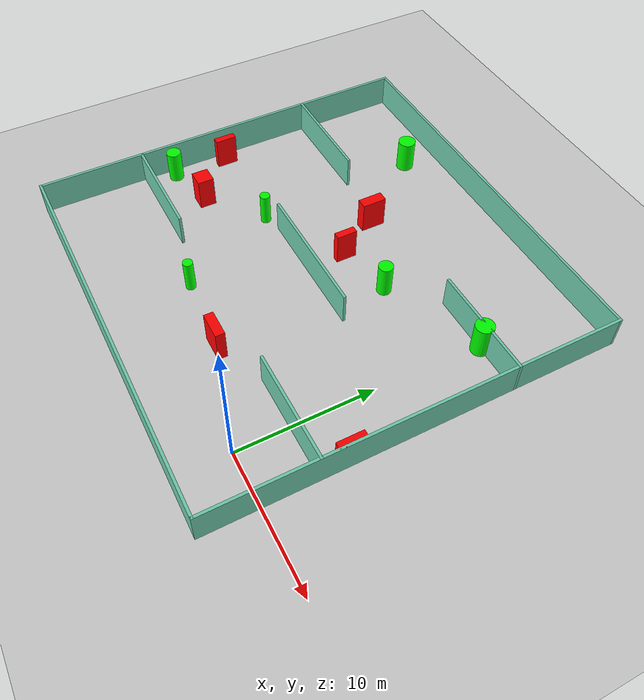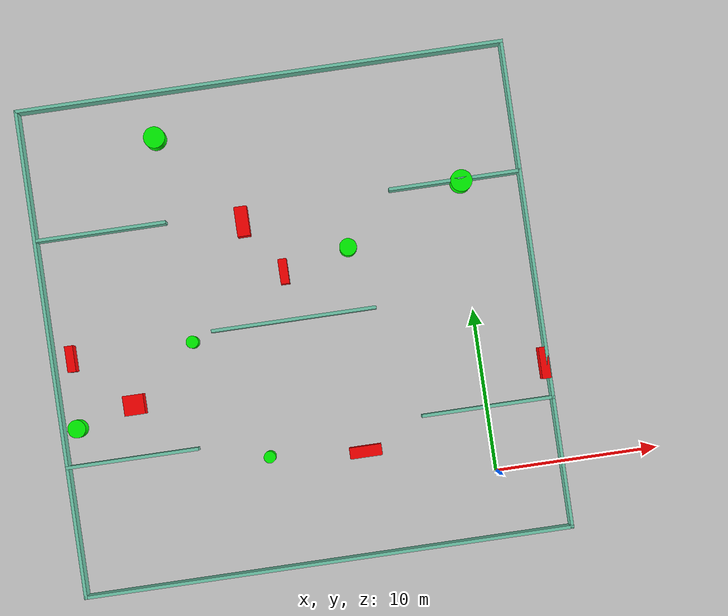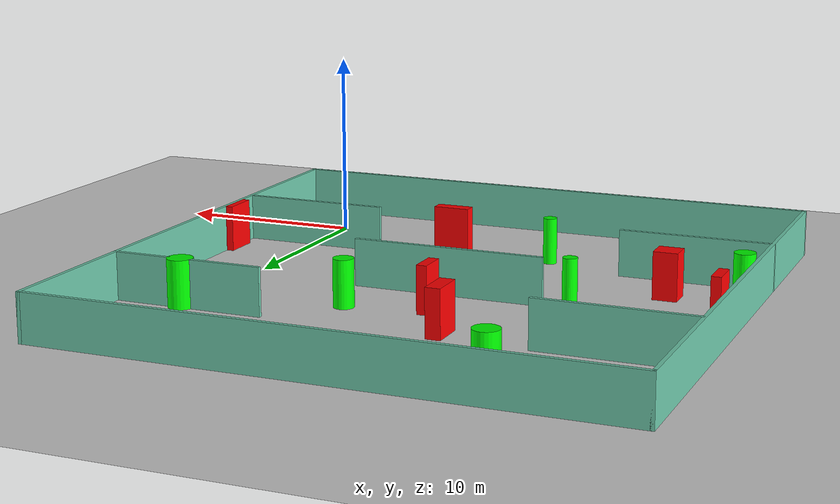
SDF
<sdf version="1.7">
 <world name="default">
  <light name="sun" type="directional">
   <pose>0 0 10 0 -0 0</pose>
   <diffuse>0.8 0.8 0.8 1</diffuse>
   <specular>0.2 0.2 0.2 1</specular>
   <attenuation>
    <range>1000</range>
    <constant>0.9</constant>
    <linear>0.01</linear>
    <quadratic>0.001</quadratic>
   </attenuation>
   <direction>-0.5 0.1 -0.9</direction>
   <spot><inner_angle>0</inner_angle><outer_angle>0</outer_angle><falloff>0</falloff></spot>
  </light>
  <model name="ground_plane">
   <static>1</static>
   <link name="link">
    <collision name="collision">
     <geometry><plane><normal>0 0 1</normal><size>100 100</size></plane></geometry>
     <surface>
      <contact><collide_bitmask>65535</collide_bitmask></contact>
      <friction><ode><mu>100</mu><mu2>50</mu2></ode></friction>
     </surface>
    </collision>
    <visual name="visual">
     <cast_shadows>0</cast_shadows>
     <geometry><plane><normal>0 0 1</normal><size>100 100</size></plane></geometry>
     <material>
      <script><uri>file://media/materials/scripts/gazebo.material</uri><name>Gazebo/Grey</name></script>
     </material>
    </visual>
   </link>
  </model>
  <gravity>0 0 -9.8</gravity>
  <magnetic_field>6e-06 2.3e-05 -4.2e-05</magnetic_field>
  <atmosphere type="adiabatic"/>
  <physics type="ode">
   <max_step_size>0.001</max_step_size>
   <real_time_factor>1</real_time_factor>
   <real_time_update_rate>1000</real_time_update_rate>
  </physics>
  <scene><ambient>0.4 0.4 0.4 1</ambient><background>0.7 0.7 0.7 1</background><shadows>1</shadows></scene>
  <spherical_coordinates>
   <surface_model>EARTH_WGS84</surface_model>
   <latitude_deg>0</latitude_deg>
   <longitude_deg>0</longitude_deg>
   <elevation>0</elevation>
   <heading_deg>0</heading_deg>
  </spherical_coordinates>
  <model name="my_base_walls">
   <link name="Wall_10">
    <collision name="Wall_10_Collision">
     <geometry><box><size>8.2 0.2 2.5</size></box></geometry>
     <pose>0 0 1.25 0 -0 0</pose>
    </collision>
    <visual name="Wall_10_Visual">
     <pose>0 0 1.25 0 -0 0</pose>
     <geometry><box><size>8.2 0.2 2.5</size></box></geometry>
     <material>
      <script><uri>file://media/materials/scripts/gazebo.material</uri><name>Gazebo/Grey</name></script>
      <ambient>0.435294 0.796078 0.67451 1</ambient>
     </material>
     <meta><layer>0</layer></meta>
    </visual>
    <pose>-11 -7 0 0 -0 0</pose>
   </link>
   <link name="Wall_12">
    <collision name="Wall_12_Collision">
     <geometry><box><size>8.2 0.2 2.5</size></box></geometry>
     <pose>0 0 1.25 0 -0 0</pose>
    </collision>
    <visual name="Wall_12_Visual">
     <pose>0 0 1.25 0 -0 0</pose>
     <geometry><box><size>8.2 0.2 2.5</size></box></geometry>
     <material>
      <script><uri>file://media/materials/scripts/gazebo.material</uri><name>Gazebo/Grey</name></script>
      <ambient>0.435294 0.796078 0.67451 1</ambient>
     </material>
     <meta><layer>0</layer></meta>
    </visual>
    <pose>-11 7 0 0 -0 0</pose>
   </link>
   <link name="Wall_14">
    <collision name="Wall_14_Collision">
     <geometry><box><size>8.2 0.2 2.5</size></box></geometry>
     <pose>0 0 1.25 0 -0 0</pose>
    </collision>
    <visual name="Wall_14_Visual">
     <pose>0 0 1.25 0 -0 0</pose>
     <geometry><box><size>8.2 0.2 2.5</size></box></geometry>
     <material>
      <script><uri>file://media/materials/scripts/gazebo.material</uri><name>Gazebo/Grey</name></script>
      <ambient>0.435294 0.796078 0.67451 1</ambient>
     </material>
     <meta><layer>0</layer></meta>
    </visual>
    <pose>11 7 0 0 -0 3.14159</pose>
   </link>
   <link name="Wall_16">
    <collision name="Wall_16_Collision">
     <geometry><box><size>10.2 0.2 2.5</size></box></geometry>
     <pose>0 0 1.25 0 -0 0</pose>
    </collision>
    <visual name="Wall_16_Visual">
     <pose>0 0 1.25 0 -0 0</pose>
     <geometry><box><size>10.2 0.2 2.5</size></box></geometry>
     <material>
      <script><uri>file://media/materials/scripts/gazebo.material</uri><name>Gazebo/Grey</name></script>
      <ambient>0.435294 0.796078 0.67451 1</ambient>
     </material>
     <meta><layer>0</layer></meta>
    </visual>
    <pose>0 0 0 0 -0 3.14159</pose>
   </link>
   <link name="Wall_2">
    <collision name="Wall_2_Collision">
     <geometry><box><size>30.2 0.2 2.5</size></box></geometry>
     <pose>0 0 1.25 0 -0 0</pose>
    </collision>
    <visual name="Wall_2_Visual">
     <pose>0 0 1.25 0 -0 0</pose>
     <geometry><box><size>30.2 0.2 2.5</size></box></geometry>
     <material>
      <script><uri>file://media/materials/scripts/gazebo.material</uri><name>Gazebo/Grey</name></script>
      <ambient>0.435294 0.796078 0.67451 1</ambient>
     </material>
     <meta><layer>0</layer></meta>
    </visual>
    <pose>0 -15 0 0 -0 3.14159</pose>
   </link>
   <link name="Wall_3">
    <collision name="Wall_3_Collision">
     <geometry><box><size>30.2 0.2 2.5</size></box></geometry>
     <pose>0 0 1.25 0 -0 0</pose>
    </collision>
    <visual name="Wall_3_Visual">
     <pose>0 0 1.25 0 -0 0</pose>
     <geometry><box><size>30.2 0.2 2.5</size></box></geometry>
     <material>
      <script><uri>file://media/materials/scripts/gazebo.material</uri><name>Gazebo/Grey</name></script>
      <ambient>0.435294 0.796078 0.67451 1</ambient>
     </material>
     <meta><layer>0</layer></meta>
    </visual>
    <pose>-15 0 0 0 -0 1.5708</pose>
   </link>
   <link name="Wall_4">
    <collision name="Wall_4_Collision">
     <geometry><box><size>30.2 0.2 2.5</size></box></geometry>
     <pose>0 0 1.25 0 -0 0</pose>
    </collision>
    <visual name="Wall_4_Visual">
     <pose>0 0 1.25 0 -0 0</pose>
     <geometry><box><size>30.2 0.2 2.5</size></box></geometry>
     <material>
      <script><uri>file://media/materials/scripts/gazebo.material</uri><name>Gazebo/Grey</name></script>
      <ambient>0.435294 0.796078 0.67451 1</ambient>
     </material>
     <meta><layer>0</layer></meta>
    </visual>
    <pose>0 15 0 0 -0 0</pose>
   </link>
   <link name="Wall_6">
    <collision name="Wall_6_Collision">
     <geometry><box><size>30.2 0.2 2.5</size></box></geometry>
     <pose>0 0 1.25 0 -0 0</pose>
    </collision>
    <visual name="Wall_6_Visual">
     <pose>0 0 1.25 0 -0 0</pose>
     <geometry><box><size>30.2 0.2 2.5</size></box></geometry>
     <material>
      <script><uri>file://media/materials/scripts/gazebo.material</uri><name>Gazebo/Grey</name></script>
      <ambient>0.435294 0.796078 0.67451 1</ambient>
     </material>
     <meta><layer>0</layer></meta>
    </visual>
    <pose>15 0 0 0 -0 1.5708</pose>
   </link>
   <link name="Wall_8">
    <collision name="Wall_8_Collision">
     <geometry><box><size>8.2 0.2 2.5</size></box></geometry>
     <pose>0 0 1.25 0 -0 0</pose>
    </collision>
    <visual name="Wall_8_Visual">
     <pose>0 0 1.25 0 -0 0</pose>
     <geometry><box><size>8.2 0.2 2.5</size></box></geometry>
     <material>
      <script><uri>file://media/materials/scripts/gazebo.material</uri><name>Gazebo/Grey</name></script>
      <ambient>0.435294 0.796078 0.67451 1</ambient>
     </material>
     <meta><layer>0</layer></meta>
    </visual>
    <pose>11 -7 0 0 -0 3.14159</pose>
   </link>
   <static>1</static>
   <pose>-11 11 0 0 -0 0</pose>
  </model>
  <model name="cylinder1">
   <static>1</static>
   <link name="link">
    <inertial>
     <mass>1</mass>
     <inertia><ixx>0.5</ixx><ixy>0</ixy><ixz>0</ixz><iyy>0.5</iyy><iyz>0</iyz><izz>1</izz></inertia>
    </inertial>
    <collision name="collision">
     <geometry><cylinder><radius>0.5352685055179786</radius><length>2.5</length></cylinder></geometry>
    </collision>
    <visual name="visual">
     <geometry><cylinder><radius>0.5352685055179786</radius><length>2.5</length></cylinder></geometry>
     <material>
      <ambient>0 1 0 1</ambient>
      <diffuse>0 1 0 1</diffuse>
      <specular>0.1 0.1 0.1 1</specular>
      <emissive>0 0 0 0</emissive>
     </material>
    </visual>
   </link>
   <pose>-7.07532386697126 14.874907499699617 1.25 0 0 0</pose>
  </model>
  <model name="cylinder2">
   <static>1</static>
   <link name="link">
    <inertial>
     <mass>1</mass>
     <inertia><ixx>0.5</ixx><ixy>0</ixy><ixz>0</ixz><iyy>0.5</iyy><iyz>0</iyz><izz>1</izz></inertia>
    </inertial>
    <collision name="collision">
     <geometry><cylinder><radius>0.3823153703892139</radius><length>2.5</length></cylinder></geometry>
    </collision>
    <visual name="visual">
     <geometry><cylinder><radius>0.3823153703892139</radius><length>2.5</length></cylinder></geometry>
     <material>
      <ambient>0 1 0 1</ambient>
      <diffuse>0 1 0 1</diffuse>
      <specular>0.1 0.1 0.1 1</specular>
      <emissive>0 0 0 0</emissive>
     </material>
    </visual>
   </link>
   <pose>-17.336514318930274 10.506339230733753 1.25 0 0 0</pose>
  </model>
  <model name="cylinder3">
   <static>1</static>
   <link name="link">
    <inertial>
     <mass>1</mass>
     <inertia><ixx>0.5</ixx><ixy>0</ixy><ixz>0</ixz><iyy>0.5</iyy><iyz>0</iyz><izz>1</izz></inertia>
    </inertial>
    <collision name="collision">
     <geometry><cylinder><radius>0.6612666240964927</radius><length>2.5</length></cylinder></geometry>
    </collision>
    <visual name="visual">
     <geometry><cylinder><radius>0.6612666240964927</radius><length>2.5</length></cylinder></geometry>
     <material>
      <ambient>0 1 0 1</ambient>
      <diffuse>0 1 0 1</diffuse>
      <specular>0.1 0.1 0.1 1</specular>
      <emissive>0 0 0 0</emissive>
     </material>
    </visual>
   </link>
   <pose>-17.842231950758247 23.217835791938672 1.25 0 0 0</pose>
  </model>
  <model name="cylinder4">
   <static>1</static>
   <link name="link">
    <inertial>
     <mass>1</mass>
     <inertia><ixx>0.5</ixx><ixy>0</ixy><ixz>0</ixz><iyy>0.5</iyy><iyz>0</iyz><izz>1</izz></inertia>
    </inertial>
    <collision name="collision">
     <geometry><cylinder><radius>0.5572573675035941</radius><length>2.5</length></cylinder></geometry>
    </collision>
    <visual name="visual">
     <geometry><cylinder><radius>0.5572573675035941</radius><length>2.5</length></cylinder></geometry>
     <material>
      <ambient>0 1 0 1</ambient>
      <diffuse>0 1 0 1</diffuse>
      <specular>0.1 0.1 0.1 1</specular>
      <emissive>0 0 0 0</emissive>
     </material>
    </visual>
   </link>
   <pose>-25.070509932636284 6.269327886722047 1.25 0 0 0</pose>
  </model>
  <model name="cylinder5">
   <static>1</static>
   <link name="link">
    <inertial>
     <mass>1</mass>
     <inertia><ixx>0.5</ixx><ixy>0</ixy><ixz>0</ixz><iyy>0.5</iyy><iyz>0</iyz><izz>1</izz></inertia>
    </inertial>
    <collision name="collision">
     <geometry><cylinder><radius>0.6723180358129004</radius><length>2.5</length></cylinder></geometry>
    </collision>
    <visual name="visual">
     <geometry><cylinder><radius>0.6723180358129004</radius><length>2.5</length></cylinder></geometry>
     <material>
      <ambient>0 1 0 1</ambient>
      <diffuse>0 1 0 1</diffuse>
      <specular>0.1 0.1 0.1 1</specular>
      <emissive>0 0 0 0</emissive>
     </material>
    </visual>
   </link>
   <pose>0.36549501137360707 17.895810139892724 1.25 0 0 0</pose>
  </model>
  <model name="cylinder6">
   <static>1</static>
   <link name="link">
    <inertial>
     <mass>1</mass>
     <inertia><ixx>0.5</ixx><ixy>0</ixy><ixz>0</ixz><iyy>0.5</iyy><iyz>0</iyz><izz>1</izz></inertia>
    </inertial>
    <collision name="collision">
     <geometry><cylinder><radius>0.36886425243356397</radius><length>2.5</length></cylinder></geometry>
    </collision>
    <visual name="visual">
     <geometry><cylinder><radius>0.36886425243356397</radius><length>2.5</length></cylinder></geometry>
     <material>
      <ambient>0 1 0 1</ambient>
      <diffuse>0 1 0 1</diffuse>
      <specular>0.1 0.1 0.1 1</specular>
      <emissive>0 0 0 0</emissive>
     </material>
    </visual>
   </link>
   <pose>-13.654761933181089 2.8626257189073714 1.25 0 0 0</pose>
  </model>
  <model name="box1">
   <static>1</static>
   <link name="link">
    <inertial>
     <mass>1</mass>
     <inertia><ixx>0.083</ixx><ixy>0</ixy><ixz>0</ixz><iyy>0.083</iyy><iyz>0</iyz><izz>0.083</izz></inertia>
    </inertial>
    <collision name="collision">
     <geometry><box><size>0.7871096216322935 1.832311235647679 2.5</size></box></geometry>
    </collision>
    <visual name="visual">
     <geometry><box><size>0.7871096216322935 1.832311235647679 2.5</size></box></geometry>
     <material>
      <ambient>1 0 0 1</ambient>
      <diffuse>1 0 0 1</diffuse>
      <specular>0.1 0.1 0.1 1</specular>
      <emissive>0 0 0 0</emissive>
     </material>
    </visual>
    <sensor name="my_contact" type="contact">
     <contact><collision>box_collision</collision><topic>__default_topic__</topic></contact>
    </sensor>
   </link>
   <pose>-13.267826486479013 17.370894647025434 1.25 0 0 0</pose>
  </model>
  <model name="box2">
   <static>1</static>
   <link name="link">
    <inertial>
     <mass>1</mass>
     <inertia><ixx>0.083</ixx><ixy>0</ixy><ixz>0</ixz><iyy>0.083</iyy><iyz>0</iyz><izz>0.083</izz></inertia>
    </inertial>
    <collision name="collision">
     <geometry><box><size>0.5133069480456951 1.6208489366394907 2.5</size></box></geometry>
    </collision>
    <visual name="visual">
     <geometry><box><size>0.5133069480456951 1.6208489366394907 2.5</size></box></geometry>
     <material>
      <ambient>1 0 0 1</ambient>
      <diffuse>1 0 0 1</diffuse>
      <specular>0.1 0.1 0.1 1</specular>
      <emissive>0 0 0 0</emissive>
     </material>
    </visual>
    <sensor name="my_contact" type="contact">
     <contact><collision>box_collision</collision><topic>__default_topic__</topic></contact>
    </sensor>
   </link>
   <pose>-24.86223498571774 10.552785664621933 1.25 0 0 0</pose>
  </model>
  <model name="box3">
   <static>1</static>
   <link name="link">
    <inertial>
     <mass>1</mass>
     <inertia><ixx>0.083</ixx><ixy>0</ixy><ixz>0</ixz><iyy>0.083</iyy><iyz>0</iyz><izz>0.083</izz></inertia>
    </inertial>
    <collision name="collision">
     <geometry><box><size>1.9816676078597746 0.690909451759134 2.5</size></box></geometry>
    </collision>
    <visual name="visual">
     <geometry><box><size>1.9816676078597746 0.690909451759134 2.5</size></box></geometry>
     <material>
      <ambient>1 0 0 1</ambient>
      <diffuse>1 0 0 1</diffuse>
      <specular>0.1 0.1 0.1 1</specular>
      <emissive>0 0 0 0</emissive>
     </material>
    </visual>
    <sensor name="my_contact" type="contact">
     <contact><collision>box_collision</collision><topic>__default_topic__</topic></contact>
    </sensor>
   </link>
   <pose>-7.804889675819384 2.3620200280968913 1.25 0 0 0</pose>
  </model>
  <model name="box4">
   <static>1</static>
   <link name="link">
    <inertial>
     <mass>1</mass>
     <inertia><ixx>0.083</ixx><ixy>0</ixy><ixz>0</ixz><iyy>0.083</iyy><iyz>0</iyz><izz>0.083</izz></inertia>
    </inertial>
    <collision name="collision">
     <geometry><box><size>1.2792088888394466 1.2376666095221622 2.5</size></box></geometry>
    </collision>
    <visual name="visual">
     <geometry><box><size>1.2792088888394466 1.2376666095221622 2.5</size></box></geometry>
     <material>
      <ambient>1 0 0 1</ambient>
      <diffuse>1 0 0 1</diffuse>
      <specular>0.1 0.1 0.1 1</specular>
      <emissive>0 0 0 0</emissive>
     </material>
    </visual>
    <sensor name="my_contact" type="contact">
     <contact><collision>box_collision</collision><topic>__default_topic__</topic></contact>
    </sensor>
   </link>
   <pose>-21.418384621502973 7.220474019188307 1.25 0 0 0</pose>
  </model>
  <model name="box5">
   <static>1</static>
   <link name="link">
    <inertial>
     <mass>1</mass>
     <inertia><ixx>0.083</ixx><ixy>0</ixy><ixz>0</ixz><iyy>0.083</iyy><iyz>0</iyz><izz>0.083</izz></inertia>
    </inertial>
    <collision name="collision">
     <geometry><box><size>0.5584869691198502 1.9455353661615515 2.5</size></box></geometry>
    </collision>
    <visual name="visual">
     <geometry><box><size>0.5584869691198502 1.9455353661615515 2.5</size></box></geometry>
     <material>
      <ambient>1 0 0 1</ambient>
      <diffuse>1 0 0 1</diffuse>
      <specular>0.1 0.1 0.1 1</specular>
      <emissive>0 0 0 0</emissive>
     </material>
    </visual>
    <sensor name="my_contact" type="contact">
     <contact><collision>box_collision</collision><topic>__default_topic__</topic></contact>
    </sensor>
   </link>
   <pose>3.7932093885398857 6.145920518375405 1.25 0 0 0</pose>
  </model>
  <model name="box6">
   <static>1</static>
   <link name="link">
    <inertial>
     <mass>1</mass>
     <inertia><ixx>0.083</ixx><ixy>0</ixy><ixz>0</ixz><iyy>0.083</iyy><iyz>0</iyz><izz>0.083</izz></inertia>
    </inertial>
    <collision name="collision">
     <geometry><box><size>0.5338366660082328 1.5426010626889548 2.5</size></box></geometry>
    </collision>
    <visual name="visual">
     <geometry><box><size>0.5338366660082328 1.5426010626889548 2.5</size></box></geometry>
     <material>
      <ambient>1 0 0 1</ambient>
      <diffuse>1 0 0 1</diffuse>
      <specular>0.1 0.1 0.1 1</specular>
      <emissive>0 0 0 0</emissive>
     </material>
    </visual>
    <sensor name="my_contact" type="contact">
     <contact><collision>box_collision</collision><topic>__default_topic__</topic></contact>
    </sensor>
   </link>
   <pose>-11.190818473777345 13.97915186995155 1.25 0 0 0</pose>
  </model>
 </world>
</sdf>
